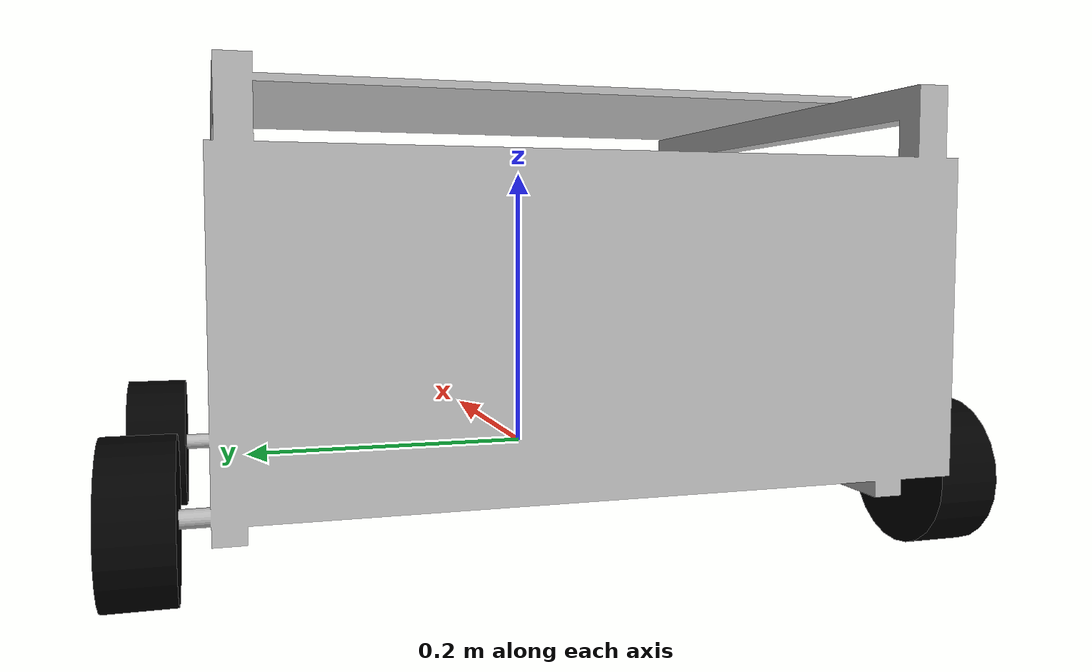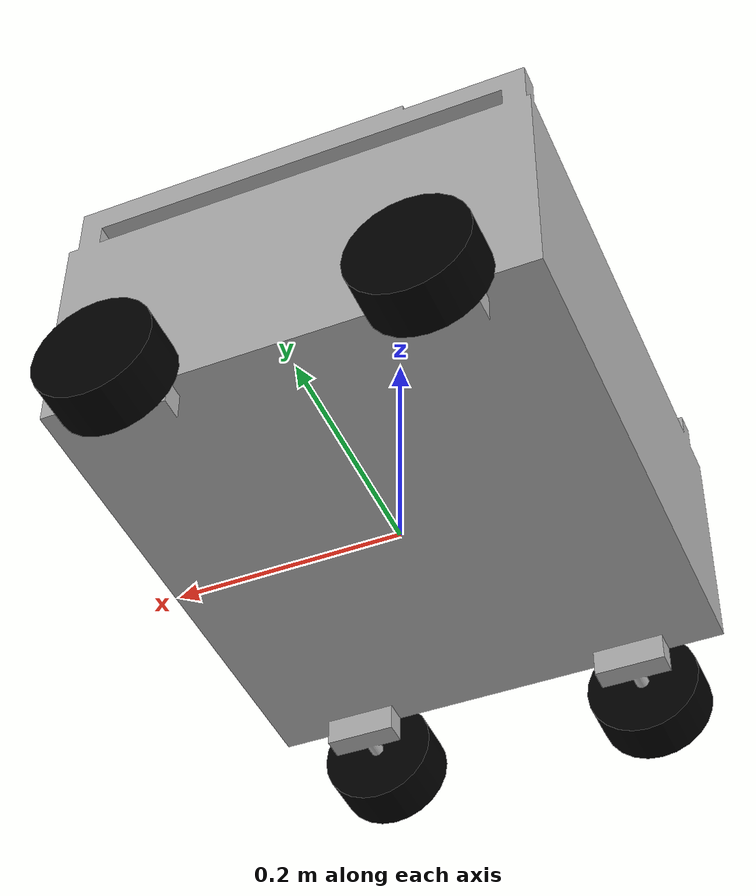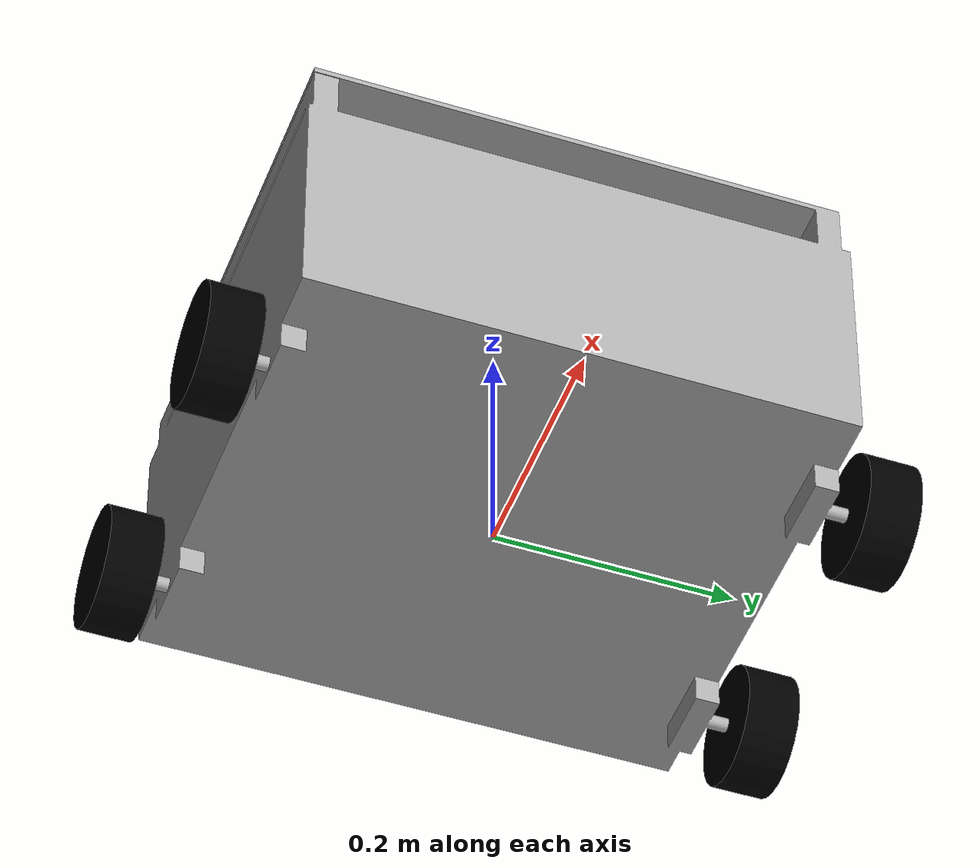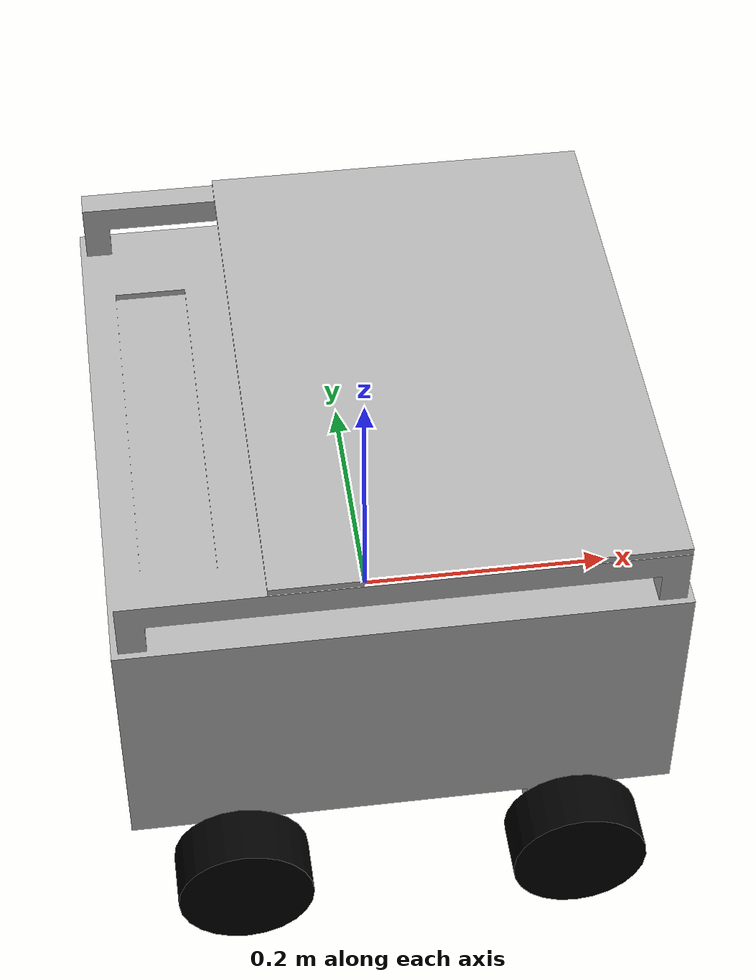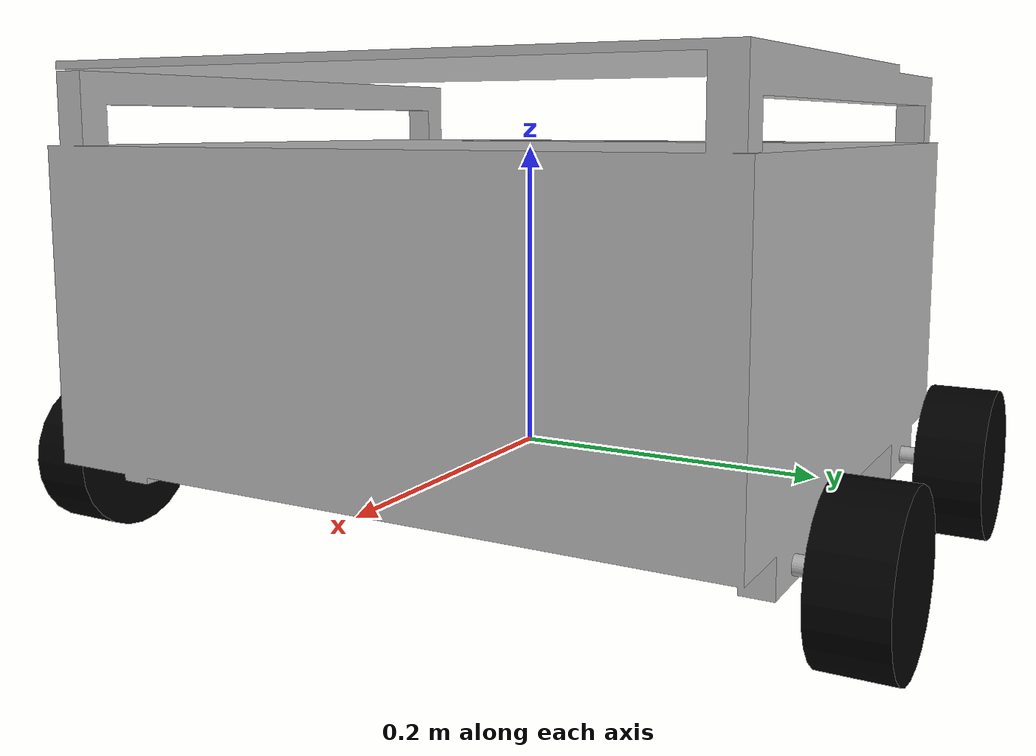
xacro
<?xml version="1.0"?>
<robot xmlns:xacro="http://www.ros.org/wiki/xacro" name="ostem">

    <!-- Main robot structure -->
    <xacro:include filename="ostem_core.xacro" />

    <!-- Robot kinematics -->
    <xacro:include filename="ostem_gazebo_kinematics.xacro" />

    <!-- Sensors -->
    <gazebo>

        <plugin
            filename="gz-sim-sensors-system" name="gz::sim::systems::Sensors">
            <render_engine>ogre2</render_engine>
        </plugin>
        <plugin filename="gz-sim-imu-system" name="gz::sim::systems::Imu">
        </plugin>
        <plugin filename="gz-sim-magnetometer-system" name="gz::sim::systems::Magnetometer">
        </plugin>
        <plugin filename="gz-sim-navsat-system" name="gz::sim::systems::NavSat">
        </plugin>

    </gazebo>

    <!-- LiDAR -->
    <xacro:include filename="lidar.xacro" />

    <!-- IMU -->
    <xacro:include filename="imu.xacro" />

    <!-- GPS -->
    <xacro:include filename="gps.xacro" />

</robot>

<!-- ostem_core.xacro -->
<robot xmlns:xacro="http://www.ros.org/wiki/xacro" name="ostem">

    <!-- Constants -->
    <xacro:property name="chassis_length" value="0.410" />
    <xacro:property name="chassis_breadth" value="0.450" />
    <xacro:property name="chassis_height" value="0.005" />
    <xacro:property name="chassis_mass" value="5.132" />

    <xacro:property name="wheel_length" value="0.043" />
    <xacro:property name="wheel_radius" value="0.05035" />
    <xacro:property name="chassis_wheel_x_offset" value="${(chassis_length/2)-0.08}" />
    <xacro:property name="chassis_wheel_offset_height" value="0.009" />

    <xacro:property name="wheel_separation" value="0.529526" />
    <xacro:property name="wheel_mass" value="0.1" />

    <!-- Imports -->
    <xacro:include filename="materials.xacro" />

    <!-- Wheel xacro -->
    <xacro:macro name="wheel" params="prefix reflect_x reflect_y">

        <link name="${prefix}_wheel_link">

            <visual>
                <geometry>
                    <cylinder radius="${wheel_radius}" length="${wheel_length}" />
                </geometry>
                <material name="black" />
            </visual>
            <collision>
                <geometry>
                    <cylinder radius="${wheel_radius}" length="${wheel_length}" />
                </geometry>
            </collision>
            <inertial>
                <mass value="${wheel_mass}" />
                <origin xyz="0 0 0" rpy="${pi/2} 0 0" />
                <inertia
                    ixx="${1/12*wheel_mass*(3*(wheel_radius*wheel_radius)+(wheel_length*wheel_length))}"
                    iyy="${1/12*wheel_mass*(3*(wheel_radius*wheel_radius)+(wheel_length*wheel_length))}"
                    izz="${1/2*wheel_mass*(wheel_radius*wheel_radius)}"
                    ixy="0.0" iyz="0.0" ixz="0.0" />
            </inertial>

        </link>

        <joint name="${prefix}_wheel_joint" type="continuous">

            <parent link="base_link" />
            <child link="${prefix}_wheel_link" />
            <origin
                xyz="${-reflect_x*(chassis_wheel_x_offset)} ${-reflect_y*(wheel_separation/2)} ${-(chassis_wheel_offset_height+(chassis_height/2))}"
                rpy="${pi/2} 0 0" />
            <axis xyz="0.0 0.0 -1.0" />
            <limit effort="0.56" velocity="12.56" />

        </joint>

    </xacro:macro>

    <!-- Base link -->
    <link name="base_link">
    </link>

    <!-- Frame -->
    <link name="frame_link">

        <visual>
            <origin
                xyz="${chassis_length/2} ${-chassis_breadth/2} ${chassis_height/2}"
                rpy="0 0 ${pi/2}" />
            <geometry>
                <mesh filename="file://$(find ostem_bringup)/urdf/meshes/chassis.stl" />
            </geometry>
            <material name="silver" />
        </visual>
        <collision>
            <origin
                xyz="${chassis_length/2} ${-chassis_breadth/2} ${chassis_height/2}"
                rpy="0 0 ${pi/2}" />
            <geometry>
                <mesh filename="file://$(find ostem_bringup)/urdf/meshes/chassis.stl" />
            </geometry>
        </collision>
        <inertial>
            <origin xyz="${0.225-(chassis_length/2)} ${0.207-(chassis_breadth/2)} ${0.129-(chassis_height/2)}" rpy="0 0 0" />
            <mass value="${chassis_mass}" />
            <inertia
                ixx="0.143"
                iyy="0.176"
                izz="0.230"
                ixy="0.0" iyz="0.0" ixz="0.0" />
        </inertial>

    </link>

    <joint name="frame_joint" type="fixed">

        <parent link="base_link" />
        <child link="frame_link" />

    </joint>

    <!-- Wheels -->
    <xacro:wheel prefix="back_right" reflect_x="1" reflect_y="1" />
    <xacro:wheel prefix="back_left" reflect_x="1" reflect_y="-1" />
    <xacro:wheel prefix="front_right" reflect_x="-1" reflect_y="1" />
    <xacro:wheel prefix="front_left" reflect_x="-1" reflect_y="-1" />

</robot>

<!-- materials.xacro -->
<robot xmlns:xacro="http://www.ros.org/wiki/xacro" name="ostem">

    <!-- Material declarations -->
    <material name="black">
        <color rgba="0 0 0 1" />
    </material>

    <material name="sap">
        <color rgba="0.035 0.301 0.110 1.000" />
    </material>

    <material name="red">
        <color rgba="0.700 0.000 0.000 1.000" />
    </material>

    <material name="brown">
        <color rgba="0.588 0.294 0.000 1.000" />
    </material>

    <material name="silver">
        <color rgba="0.700 0.700 0.700 1.000" />
    </material>

</robot>

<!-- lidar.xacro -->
<robot xmlns:xacro="http://www.ros.org/wiki/xacro" name="ostem">

    <!-- Constants -->
    <xacro:property name="lidar_pos" value="0 0 ${chassis_height}" />
    <xacro:property name="lidar_rpy" value="0 0 0" />

    <!-- Model -->
    <link name="lidar_link" />

    <joint name="lidar_joint" type="fixed">
        <parent link="base_link" />
        <child link="lidar_link" />
        <origin xyz="${lidar_pos}" rpy="${lidar_rpy}" />
    </joint>

    <!-- Plugin -->

    <gazebo reference="lidar_link">

        <sensor name="lidar" type="gpu_lidar">
            <pose> 0 0 0 0 0 0 </pose>
            <visualize>false</visualize>
            <update_rate>10</update_rate>
            <lidar>
                <scan>
                    <horizontal>
                        <samples>360</samples>
                        <min_angle>-${pi}</min_angle>
                        <max_angle>${pi}</max_angle>
                    </horizontal>
                </scan>
                <range>
                    <min>0.3</min>
                    <max>12</max>
                </range>
            </lidar>
            <topic>/ostem/scan</topic>
            <gz_frame_id>lidar_link</gz_frame_id>
        </sensor>

    </gazebo>

</robot>

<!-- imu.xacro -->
<robot xmlns:xacro="http://www.ros.org/wiki/xacro" name="ostem">

    <!-- Constants -->
    <xacro:property name="imu_pos" value="0 0 0" />
    <xacro:property name="imu_rpy" value="0 0 0" />

    <!-- Model -->
    <link name="imu_link" />

    <joint name="imu_joint" type="fixed">
        <parent link="base_link" />
        <child link="imu_link" />
        <origin xyz="${imu_pos}" rpy="${imu_rpy}" />
    </joint>

    <!-- Plugin -->
    <gazebo reference="imu_link">

        <sensor name="imu" type="imu">
            <always_on>true</always_on>
            <update_rate>30</update_rate>
            <visualize>true</visualize>
            <topic>/ostem/imu_raw</topic>
            <gz_frame_id>imu_link</gz_frame_id>
        </sensor>

        <sensor name="magnetometer" type="magnetometer">
            <topic>/ostem/mag_raw</topic>
            <gz_frame_id>imu_link</gz_frame_id>
            <always_on>true</always_on>
            <update_rate>50.0</update_rate>
            <visualize>true</visualize>
            <enable_metrics>true</enable_metrics>
            <magnetometer>
            <x>
                <noise type="gaussian">
                <mean>0.0</mean>
                <stddev>0.00001</stddev>
                </noise>
            </x>
            <y>
                <noise type="gaussian">
                <mean>0.0</mean>
                <stddev>0.00001</stddev>
                </noise>
            </y>
            <z>
                <noise type="gaussian">
                <mean>0.0</mean>
                <stddev>0.00001</stddev>
                </noise>
            </z>
            </magnetometer>
      </sensor>

    </gazebo>

</robot>

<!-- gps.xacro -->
<robot xmlns:xacro="http://www.ros.org/wiki/xacro" name="ostem">

    <!-- Constants -->
    <xacro:property name="gps_pos" value="0 0 0" />
    <xacro:property name="gps_rpy" value="0 0 0" />

    <!-- Model -->
    <link name="gps_link" />

    <joint name="gps_joint" type="fixed">
        <parent link="base_link" />
        <child link="gps_link" />
        <origin xyz="${gps_pos}" rpy="${gps_rpy}" />
    </joint>

    <!-- Plugin -->
    <gazebo reference="gps_link">

        <sensor name="gps_sensor" type="navsat">
            <topic>/ostem/gps_raw</topic>
            <gz_frame_id>gps_link</gz_frame_id>
            <pose>0 0 0 0 0 0</pose>
            <update_rate>10.0</update_rate>
            <always_on>true</always_on>
            <gps>
            <position_sensing>
                <horizontal>
                <noise type="gaussian">
                    <mean>0.0</mean>
                    <stddev>0.000001</stddev>
                </noise>
                </horizontal>
                <vertical>
                <noise type="gaussian">
                    <mean>0.0</mean>
                    <stddev>0.01</stddev>
                </noise>
                </vertical>
            </position_sensing>
            </gps>
        </sensor>

    </gazebo>

</robot>
